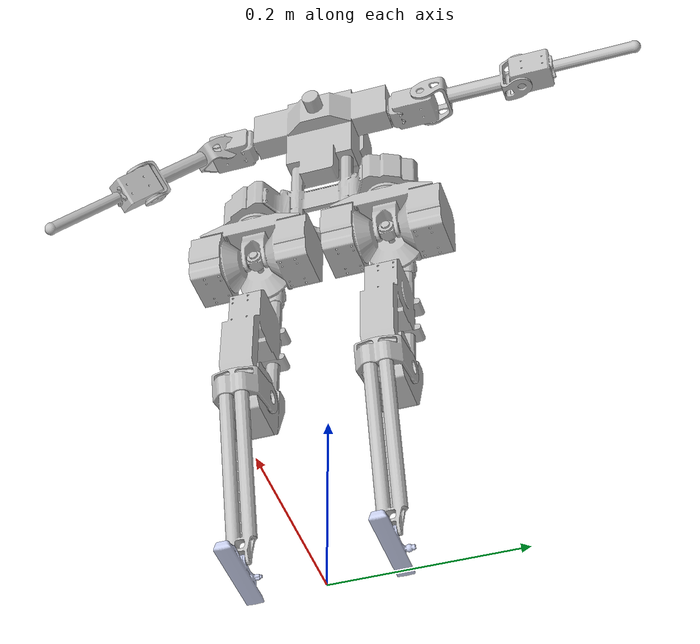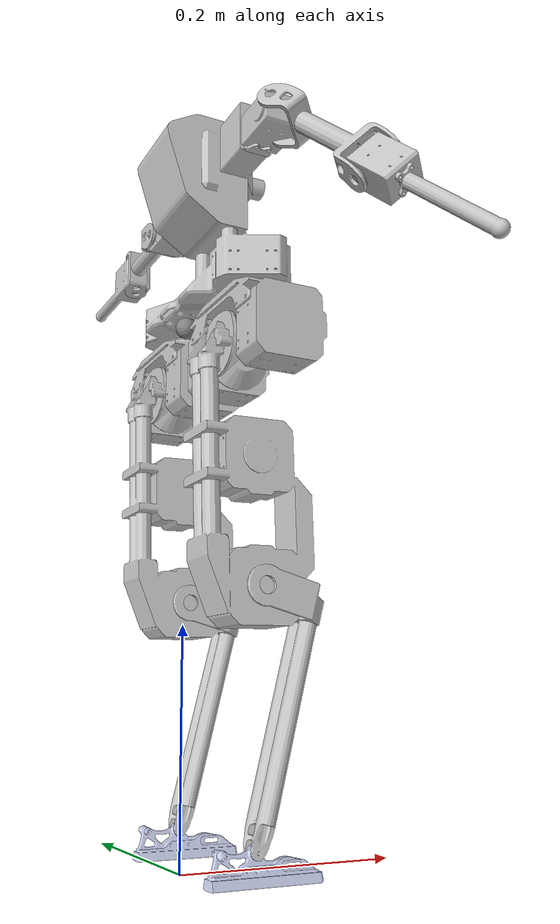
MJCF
<mujoco model="bruce">
  <compiler angle="radian" meshdir="../meshes" autolimits="true"/>

  <asset>
    <mesh name="base_link" file="base_link.STL"/>
    <mesh name="hip_yaw_link_r" file="hip_yaw_link_r.STL"/>
    <mesh name="hip_roll_link_r" file="hip_roll_link_r.STL"/>
    <mesh name="hip_pitch_link_r" file="hip_pitch_link_r.STL"/>
    <mesh name="knee_pitch_link_r" file="knee_pitch_link_r.STL"/>
    <mesh name="ankle_pitch_link_r" file="ankle_pitch_link_r.STL"/>
    <mesh name="hip_yaw_link_l" file="hip_yaw_link_l.STL"/>
    <mesh name="hip_roll_link_l" file="hip_roll_link_l.STL"/>
    <mesh name="hip_pitch_link_l" file="hip_pitch_link_l.STL"/>
    <mesh name="knee_pitch_link_l" file="knee_pitch_link_l.STL"/>
    <mesh name="ankle_pitch_link_l" file="ankle_pitch_link_l.STL"/>
    <mesh name="shoulder_pitch_link_r" file="shoulder_pitch_link_r.STL"/>
    <mesh name="shoulder_roll_link_r" file="shoulder_roll_link_r.STL"/>
    <mesh name="elbow_pitch_link_r" file="elbow_pitch_link_r.STL"/>
    <mesh name="shoulder_pitch_link_l" file="shoulder_pitch_link_l.STL"/>
    <mesh name="shoulder_roll_link_l" file="shoulder_roll_link_l.STL"/>
    <mesh name="elbow_pitch_link_l" file="elbow_pitch_link_l.STL"/>
  </asset>
  <worldbody>
    <body name="base_link" pos="0 0 0.47">
      <inertial pos="0.02259605 -0.00011305 0.06140054" mass="1.4" diaginertia="0.0133543 0.01023631 0.005471"/>
      <geom name="body" type="mesh" mesh="base_link" rgba="0.752941176 0.752941176 0.752941176 1"/>
      <site name='imu' size='0.01' pos='0.0 0 0.0'/>
      <!-- RIGHT LEG -->
      <body name="hip_yaw_link_r" pos="0.029216 -0.0758557 -0.039765" quat="0.707107 0 0 -0.707107">
        <inertial pos="2.71e-06 -0.00024824 0.00522427" quat="0.517691 0.482114 0.518083 0.480784" mass="0.637563" diaginertia="0.0016174 0.00152078 0.000485406"/>
        <joint name="hip_yaw_r" pos="0 0 0" axis="0 0 1" limited="true" range="-3.1415 3.1415"/>
        <geom type="mesh" rgba="0.752941 0.752941 0.752941 1" mesh="hip_yaw_link_r" contype="0" conaffinity="0"/>
        <body name="hip_pitch_link_r" quat="0.5 -0.5 0.5 0.5">
          <inertial pos="-1.51e-07 0 6.88e-06" mass="0.05" diaginertia="1e-05 1e-05 1e-05"/>
          <joint name="hip_pitch_r" pos="0 0 0" axis="0 0 1" limited="true" range="-3.1415 3.1415"/>
          <geom type="mesh" rgba="0.752941 0.752941 0.752941 1" mesh="hip_roll_link_r" contype="0" conaffinity="0"/>
          <body name="hip_roll_link_r" quat="0.707107 0.707107 0 0">
            <inertial pos="0.140714 -0.0086817 0.00167429" quat="-0.0210718 0.710934 0.00543456 0.702922" mass="0.72849" diaginertia="0.0181996 0.0179488 0.000479326"/>
            <joint name="hip_roll_r" pos="0 0 0" axis="0 0 1" limited="true" range="-3.1415 3.1415"/>
            <geom type="mesh" rgba="0.752941 0.752941 0.752941 1" mesh="hip_pitch_link_r"/>
            <body name="knee_pitch_link_r" pos="0.204949 0 0">
              <inertial pos="0.0729308 0.0174645 0.00216432" quat="-0.0124752 0.71085 -0.0538621 0.701167" mass="0.0956654" diaginertia="0.00108397 0.00102192 0.000106307"/>
              <joint name="knee_pitch_r" pos="0 0 0" axis="0 0 1" limited="true" range="-3.1415 3.1415"/>
              <geom type="mesh" rgba="0.752941 0.752941 0.752941 1" mesh="knee_pitch_link_r"/>
              <body name="ankle_pitch_link_r" pos="0.199881 0 0">
                <inertial pos="0.0120775 0.0019746 0.00029511" quat="0.443128 0.545146 -0.456612 0.545855" mass="0.0276265" diaginertia="2.58838e-05 2.09859e-05 5.64035e-06"/>
                <joint name="ankle_pitch_r" pos="0 0 0" axis="0 0 1" limited="true" range="-3.1415 3.1415"/>
                <geom type="mesh" rgba="0.792157 0.819608 0.933333 1" mesh="ankle_pitch_link_r"/>
              </body>
            </body>
          </body>
        </body>
      </body>
      <!-- LEFT LEG -->
      <body name="hip_yaw_link_l" pos="0.029216 0.0758557 -0.039765" quat="0.707107 0 0 -0.707107">
        <inertial pos="0 -0.00020849 0.00528032" quat="0.518836 0.480432 0.518756 0.480506" mass="0.637386" diaginertia="0.00161868 0.00152047 0.0004852"/>
        <joint name="hip_yaw_l" pos="0 0 0" axis="0 0 1" limited="true" range="-3.1415 3.1415"/>
        <geom type="mesh" rgba="0.752941 0.752941 0.752941 1" mesh="hip_yaw_link_l" contype="0" conaffinity="0"/>
        <body name="hip_pitch_link_l" quat="0.500001 -0.499999 0.500001 0.499999">
          <inertial pos="-1.51e-07 0 6.88e-06" mass="0.05" diaginertia="1e-05 1e-05 1e-05"/>
          <joint name="hip_pitch_l" pos="0 0 0" axis="0 0 1" limited="true" range="-3.1415 3.1415"/>
          <geom type="mesh" rgba="0.752941 0.752941 0.752941 1" mesh="hip_roll_link_l" contype="0" conaffinity="0"/>
          <body name="hip_roll_link_l" quat="0.707107 0.707107 0 0">
            <inertial pos="0.142447 -0.00832054 0.00049317" quat="-0.002203 0.702817 0.024599 0.710942" mass="0.720628" diaginertia="0.018195 0.0179541 0.000461885"/>
            <joint name="hip_roll_l" pos="0 0 0" axis="0 0 1" limited="true" range="-3.1415 3.1415"/>
            <geom type="mesh" rgba="0.752941 0.752941 0.752941 1" mesh="hip_pitch_link_l"/>
            <body name="knee_pitch_link_l" pos="0.204949 0 0">
              <inertial pos="0.0730996 0.0178102 -0.00219767" quat="0.0505999 0.70058 0.00930476 0.711716" mass="0.0952654" diaginertia="0.00107995 0.00101966 0.000104635"/>
              <joint name="knee_pitch_l" pos="0 0 0" axis="0 0 1" limited="true" range="-3.1415 3.1415"/>
              <geom type="mesh" rgba="0.752941 0.752941 0.752941 1" mesh="knee_pitch_link_l"/>
              <body name="ankle_pitch_link_l" pos="0.199881 0 0">
                <inertial pos="0.0123398 0.00253004 -0.00030441" quat="0.455603 0.546571 -0.442281 0.545962" mass="0.0274829" diaginertia="2.60237e-05 2.09939e-05 5.69233e-06"/>
                <joint name="ankle_pitch_l" pos="0 0 0" axis="0 0 1" limited="true" range="-3.1415 3.1415"/>
                <geom type="mesh" rgba="0.792157 0.819608 0.933333 1" mesh="ankle_pitch_link_l"/>
              </body>
            </body>
          </body>
        </body>
      </body>
      <!-- RIGHT ARM -->
      <body name="shoulder_pitch_link_r" pos="0.029216 -0.12375 0.152985" quat="0.5 0.5 -0.5 0.5">
        <inertial pos="0 -0.00038323 -0.0141368" quat="0.999984 0.0057278 0 0" mass="0.0493169" diaginertia="2.507e-05 2.40321e-05 8.31794e-06"/>
        <joint name="shoulder_pitch_r" pos="0 0 0" axis="0 0 1" limited="true" range="-3.1415 3.1415"/>
        <geom type="mesh" rgba="0.752941 0.752941 0.752941 1" mesh="shoulder_pitch_link_r"/>
        <body name="shoulder_roll_link_r" quat="0.5 0.5 -1.5 0.5">
          <inertial pos="0.0570939 -0.00419463 0.00093738" quat="-0.205082 0.694437 -0.169487 0.66856" mass="0.024" diaginertia="0.000126403 0.000125807 7.29e-06"/>
          <joint name="shoulder_roll_r" pos="0 0 0" axis="0 0 1" limited="true" range="-3.1415 3.1415" ref='1.57'/>
          <geom type="mesh" rgba="0.752941 0.752941 0.752941 1" mesh="shoulder_roll_link_r"/>
          <body name="elbow_pitch_link_r" pos="0.1146 -0.005 0.005" quat="0.707107 0.707107 0 0">
            <inertial pos="0.0217884 0 0.0003604" quat="0.499291 0.500708 0.500708 0.499291" mass="0.0524404" diaginertia="7.261e-05 7.10305e-05 7.52949e-06"/>
            <joint name="elbow_pitch_r" pos="0 0 0" axis="0 0 1" limited="true" range="-3.1415 3.1415"/>
            <geom type="mesh" rgba="0.752941 0.752941 0.752941 1" mesh="elbow_pitch_link_r"/>
          </body>
        </body>
      </body>
      <!-- LEFT ARM -->
      <body name="shoulder_pitch_link_l" pos="0.029216 0.12375 0.152985" quat="0.5 -0.5 0.5 0.5">
        <inertial pos="0 0.00038323 -0.0141368" quat="0.999984 -0.0057278 0 0" mass="0.0493169" diaginertia="2.507e-05 2.40321e-05 8.31794e-06"/>
        <joint name="shoulder_pitch_l" pos="0 0 0" axis="0 0 1" limited="true" range="-3.1415 3.1415"/>
        <geom type="mesh" rgba="0.752941 0.752941 0.752941 1" mesh="shoulder_pitch_link_l"/>
        <body name="shoulder_roll_link_l" quat="0.5 0.5 -0.5 0.5">
          <inertial pos="0.0570939 0.00419463 0.00094155" quat="0.207025 0.693936 0.171489 0.667971" mass="0.0313652" diaginertia="0.000165195 0.000164406 9.52871e-06"/>
          <joint name="shoulder_roll_l" pos="0 0 0" axis="0 0 1" limited="true" range="-3.1415 3.1415"/>
          <geom type="mesh" rgba="0.752941 0.752941 0.752941 1" mesh="shoulder_roll_link_l"/>
          <body name="elbow_pitch_link_l" pos="0.1146 0.005 0.005" quat="0.707107 -0.707107 0 0">
            <inertial pos="0.0217884 0 0.0003604" quat="0.499291 0.500708 0.500708 0.499291" mass="0.0524404" diaginertia="7.261e-05 7.10305e-05 7.52949e-06"/>
            <joint name="elbow_pitch_l" pos="0 0 0" axis="0 0 1" limited="true" range="-3.1415 3.1415"/>
            <geom type="mesh" rgba="0.752941 0.752941 0.752941 1" mesh="elbow_pitch_link_l"/>
          </body>
        </body>
      </body>
    </body>
  </worldbody>

  <actuator>
    <motor name="hip_yaw_r" joint='hip_yaw_r' gear="1 0 0 0 0 0" ctrlrange='-200 200'/>
    <motor name="hip_pitch_r" joint='hip_pitch_r' gear="1 0 0 0 0 0" ctrlrange='-200 200'/>
    <motor name="hip_roll_r" joint='hip_roll_r' gear="1 0 0 0 0 0" ctrlrange='-200 200'/>
    <motor name="knee_pitch_r" joint='knee_pitch_r' gear="1 0 0 0 0 0" ctrlrange='-200 200'/>
    <motor name="ankle_pitch_r" joint='ankle_pitch_r' gear="1 0 0 0 0 0" ctrlrange='-200 200'/>

    <motor name="hip_yaw_l" joint='hip_yaw_l' gear="1 0 0 0 0 0" ctrlrange='-200 200'/>
    <motor name="hip_pitch_l" joint='hip_pitch_l' gear="1 0 0 0 0 0" ctrlrange='-200 200'/>
    <motor name="hip_roll_l" joint='hip_roll_l' gear="1 0 0 0 0 0" ctrlrange='-200 200'/>
    <motor name="knee_pitch_l" joint='knee_pitch_l' gear="1 0 0 0 0 0" ctrlrange='-200 200'/>
    <motor name="ankle_pitch_l" joint='ankle_pitch_l' gear="1 0 0 0 0 0" ctrlrange='-200 200'/>
  </actuator>
    <sensor>
        <actuatorpos name='hip_yaw_r_p'  actuator='hip_yaw_r' user='13'/>
        <actuatorpos name='hip_pitch_r_p'  actuator='hip_pitch_r' user='13'/>
        <actuatorpos name='hip_roll_r_p'  actuator='hip_roll_r' user='13'/>
        <actuatorpos name='knee_pitch_r_p'  actuator='knee_pitch_r' user='13'/>
        <actuatorpos name='ankle_pitch_r_p'  actuator='ankle_pitch_r' user='13'/>
        <actuatorpos name='hip_yaw_l_p'  actuator='hip_yaw_l' user='13'/>
        <actuatorpos name='hip_roll_l_p'  actuator='hip_roll_l' user='13'/>
        <actuatorpos name='hip_pitch_l_p'  actuator='hip_pitch_l' user='13'/>
        <actuatorpos name='knee_pitch_l_p'  actuator='knee_pitch_l' user='13'/>
        <actuatorpos name='ankle_pitch_l_p'  actuator='ankle_pitch_l' user='13'/>

        <actuatorvel name='hip_yaw_r_v'  actuator='hip_yaw_r' user='13'/>
        <actuatorvel name='hip_pitch_r_v'  actuator='hip_pitch_r' user='13'/>
        <actuatorvel name='hip_roll_r_v'  actuator='hip_roll_r' user='13'/>
        <actuatorvel name='knee_pitch_r_v'  actuator='knee_pitch_r' user='13'/>
        <actuatorvel name='ankle_pitch_r_v'  actuator='ankle_pitch_r' user='13'/>
        <actuatorvel name='hip_yaw_l_v'  actuator='hip_yaw_l' user='13'/>
        <actuatorvel name='hip_roll_l_v'  actuator='hip_roll_l' user='13'/>
        <actuatorvel name='hip_pitch_l_v'  actuator='hip_pitch_l' user='13'/>
        <actuatorvel name='knee_pitch_l_v'  actuator='knee_pitch_l' user='13'/>
        <actuatorvel name='ankle_pitch_l_v'  actuator='ankle_pitch_l' user='13'/>

        <actuatorfrc name='hip_yaw_r_f'  actuator='hip_yaw_r' user='13' noise='1e-3'/>
        <actuatorfrc name='hip_pitch_r_f'  actuator='hip_pitch_r' user='13' noise='1e-3'/>
        <actuatorfrc name='hip_roll_r_f'  actuator='hip_roll_r' user='13' noise='1e-3'/>
        <actuatorfrc name='knee_pitch_r_f'  actuator='knee_pitch_r' user='13' noise='1e-3'/>
        <actuatorfrc name='ankle_pitch_r_f'  actuator='ankle_pitch_r' user='13' noise='1e-3'/>
        <actuatorfrc name='hip_yaw_l_f'  actuator='hip_yaw_l' user='13' noise='1e-3'/>
        <actuatorfrc name='hip_roll_l_f'  actuator='hip_roll_l' user='13' noise='1e-3'/>
        <actuatorfrc name='hip_pitch_l_f'  actuator='hip_pitch_l' user='13' noise='1e-3'/>
        <actuatorfrc name='knee_pitch_l_f'  actuator='knee_pitch_l' user='13' noise='1e-3'/>
        <actuatorfrc name='ankle_pitch_l_f'  actuator='ankle_pitch_l' user='13' noise='1e-3'/>

        <framequat     name='orientation' objtype='site' noise='0.001' objname='imu'/>
        <framepos     name='position' objtype='site' noise='0.001' objname='imu'/>
        <gyro          name='angular-velocity'    site='imu' noise='0.005' cutoff='34.9'/>
        <velocimeter   name='linear-velocity'     site='imu' noise='0.001' cutoff='30'/>
        <accelerometer name='linear-acceleration' site='imu' noise='0.005' cutoff='157'/>
        <magnetometer  name='magnetometer'        site='imu'/>

    </sensor>
</mujoco>
